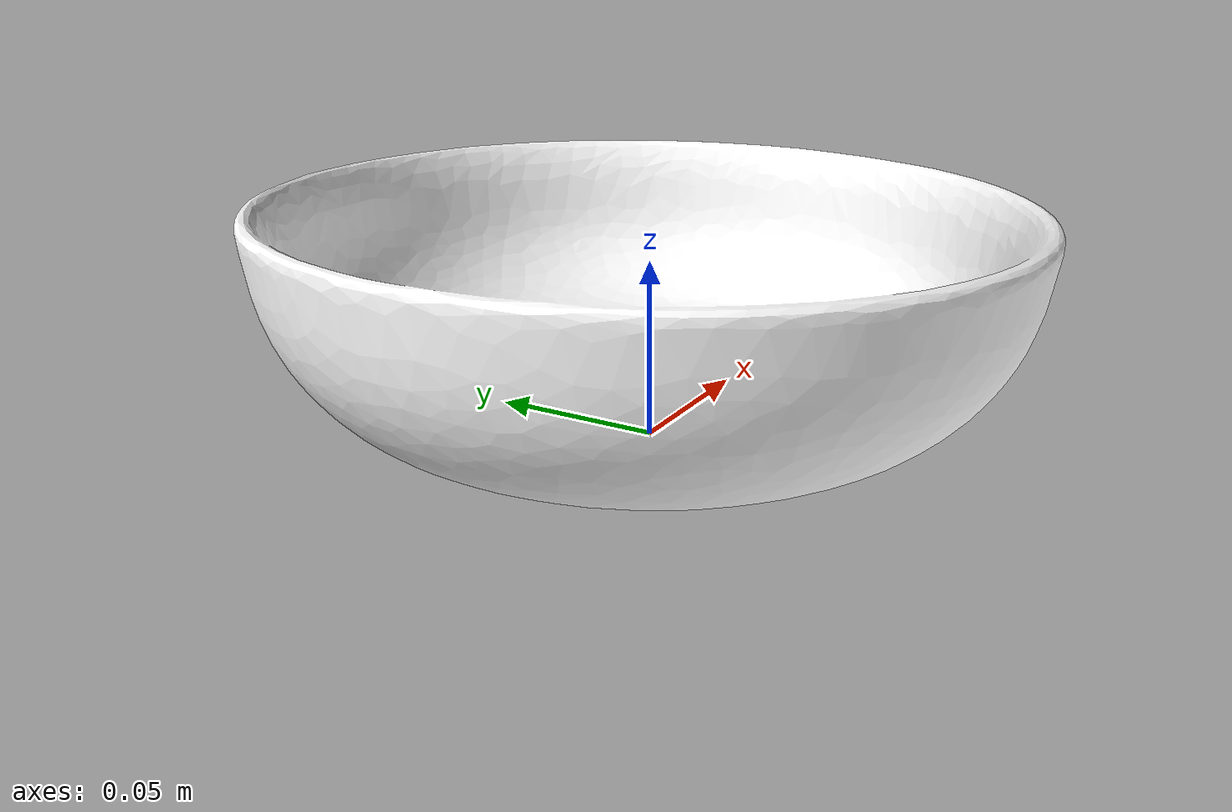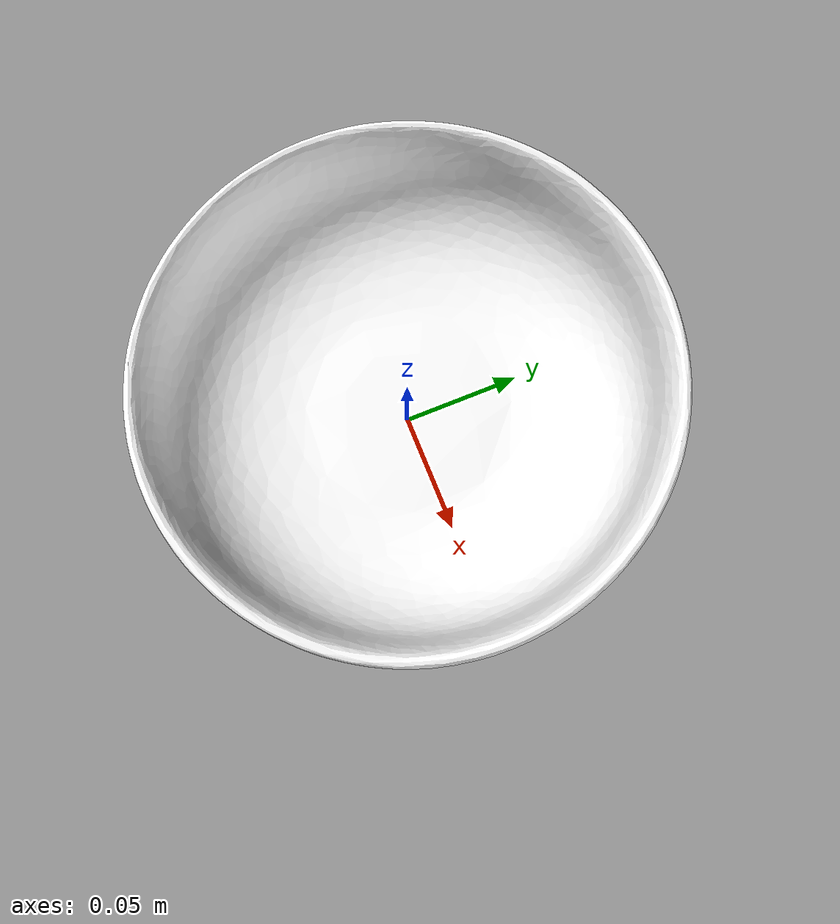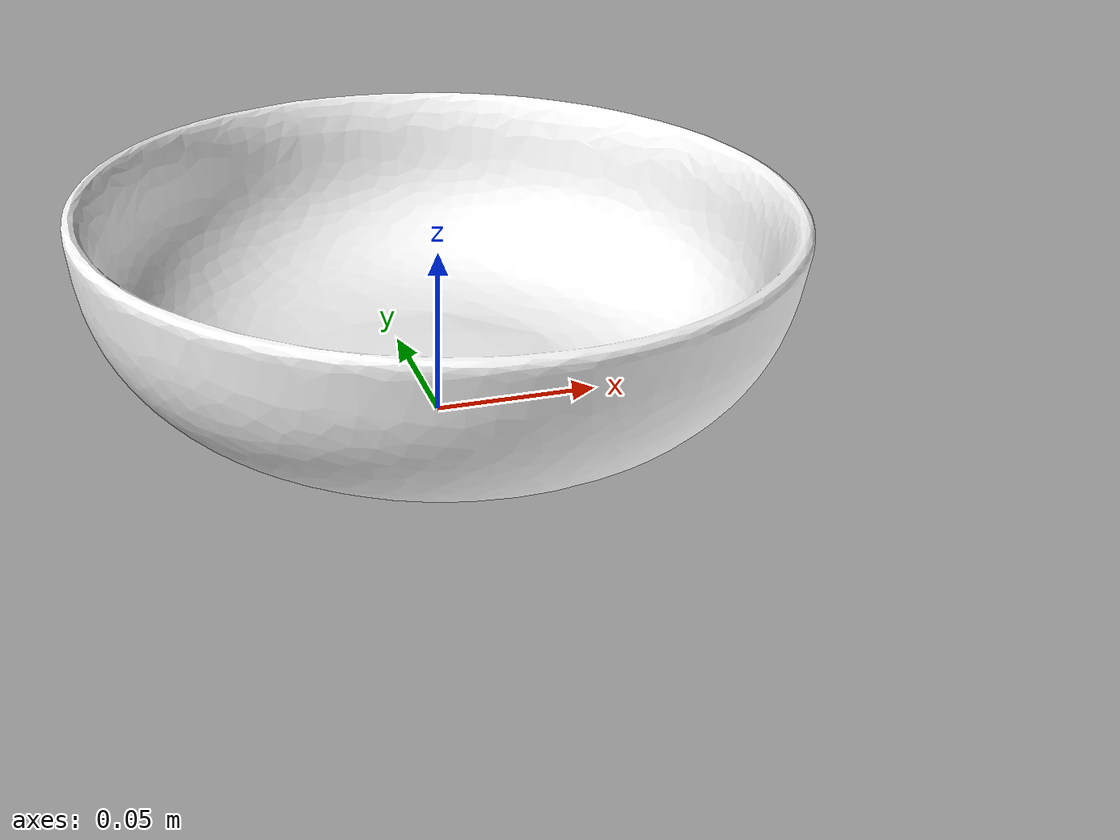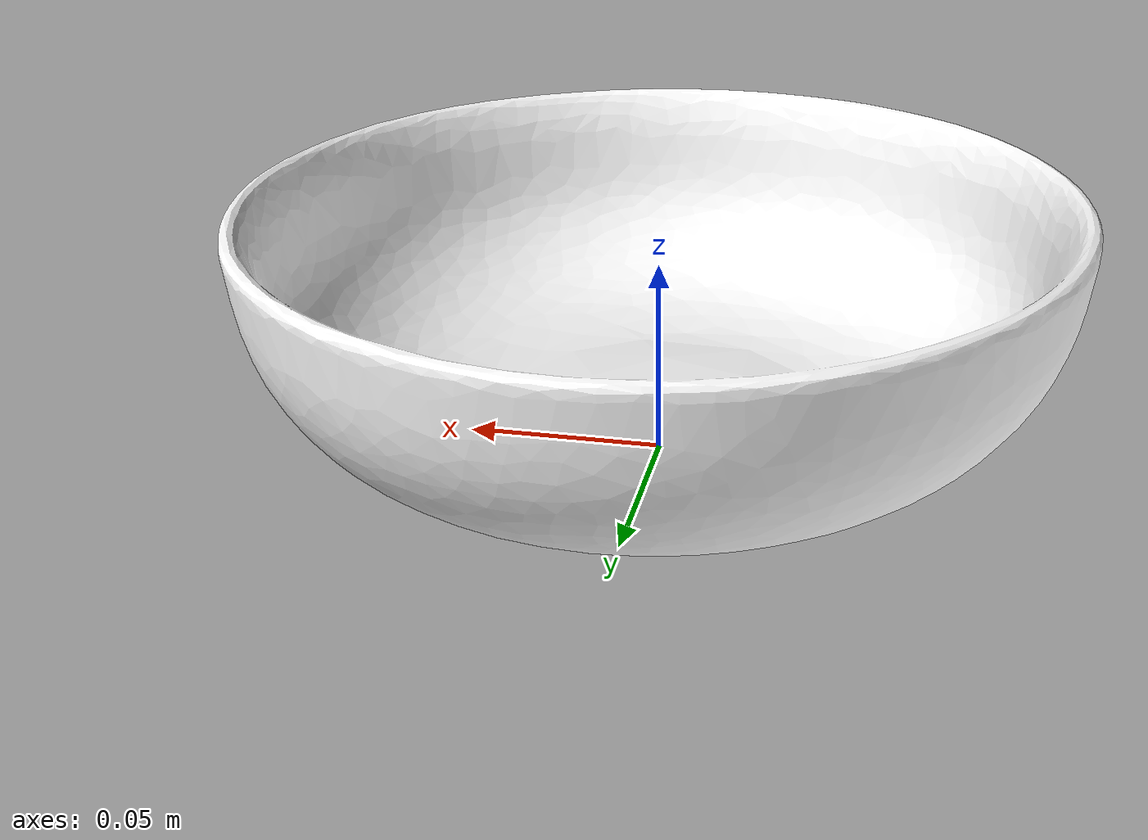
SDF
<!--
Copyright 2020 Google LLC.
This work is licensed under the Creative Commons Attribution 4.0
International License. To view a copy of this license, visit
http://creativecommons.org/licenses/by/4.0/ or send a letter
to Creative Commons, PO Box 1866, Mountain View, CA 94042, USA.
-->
<?xml version="1.0" ?>
<sdf version="1.6">
  <model name="Threshold_Porcelain_Serving_Bowl_Coupe_White">
    <link name="link_0">
      <visual name="visual">
        <geometry>
          <mesh>
            <uri>model://serving_bowl/meshes/model.obj</uri>
          </mesh>
        </geometry>
            <material> <!-- Wheel material -->
          <ambient>1 1 1 1</ambient>
        </material> <!-- End wheel material -->
      </visual>
      <collision name="collision_0">
        <geometry>
          <mesh>
            <uri>model://serving_bowl/meshes/model.obj</uri>
          </mesh>
        </geometry>
      </collision>
    </link>
  </model>
</sdf>
